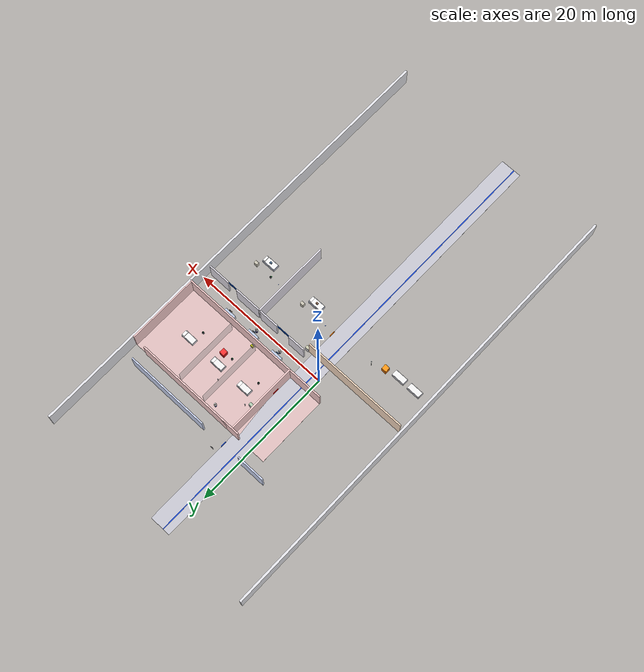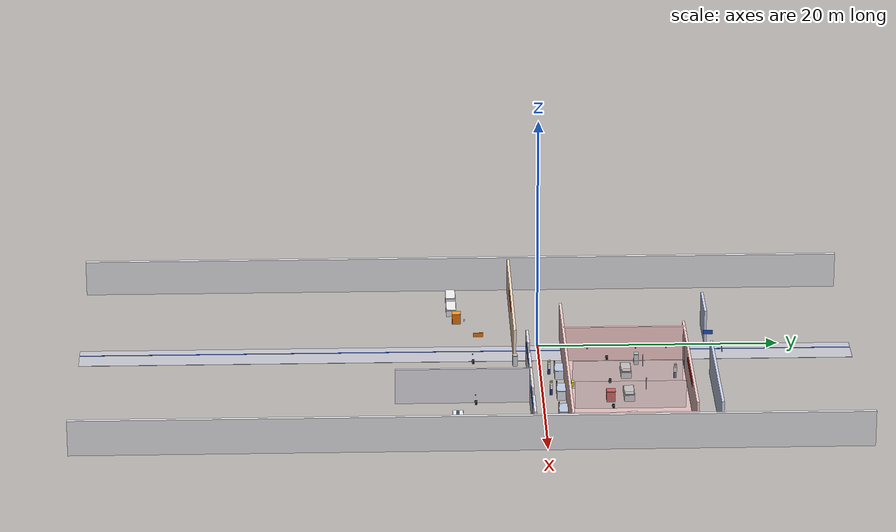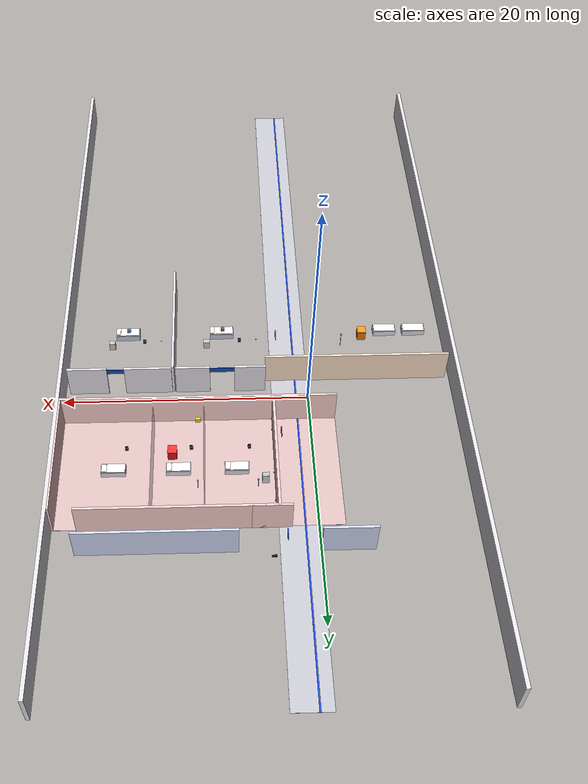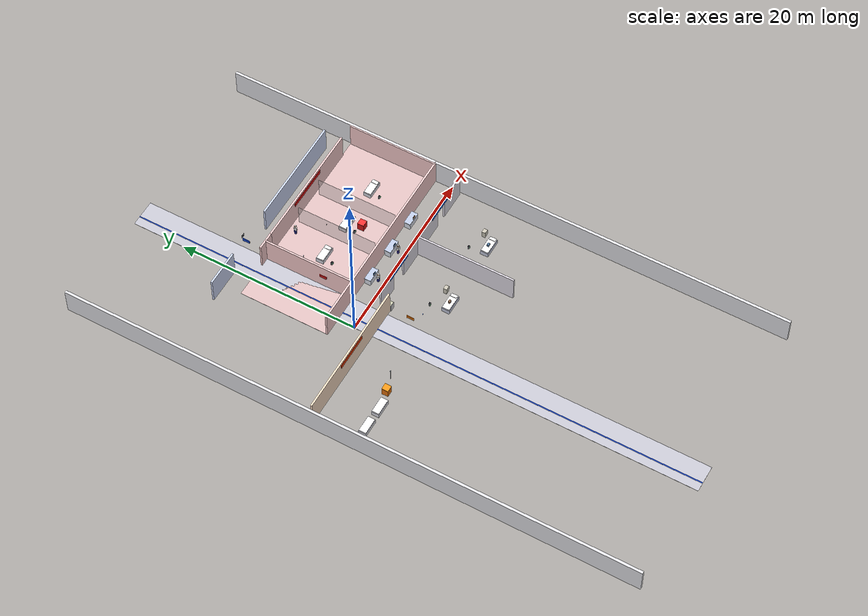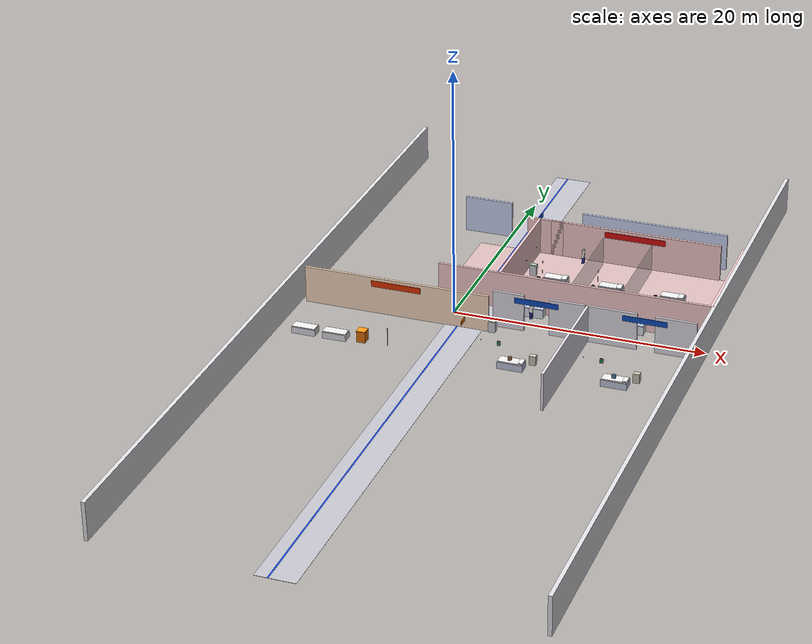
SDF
<sdf version="1.9">
 <world name="hospital">
  <model name="me">
   <static>true</static>
   <pose>20 -6 1.5 0 0 0</pose>
   <link name="l">
    <collision name="c"><geometry><box><size>0.3 64 3</size></box></geometry></collision>
    <visual name="v">
     <geometry><box><size>0.3 64 3</size></box></geometry>
     <material><ambient>0.9 0.9 0.92 1</ambient><diffuse>0.9 0.9 0.92 1</diffuse></material>
    </visual>
   </link>
  </model>
  <model name="mo">
   <static>true</static>
   <pose>-12 -6 1.5 0 0 0</pose>
   <link name="l">
    <collision name="c"><geometry><box><size>0.3 64 3</size></box></geometry></collision>
    <visual name="v">
     <geometry><box><size>0.3 64 3</size></box></geometry>
     <material><ambient>0.9 0.9 0.92 1</ambient><diffuse>0.9 0.9 0.92 1</diffuse></material>
    </visual>
   </link>
  </model>
  <model name="couloir_sol">
   <static>true</static>
   <pose>1.5 -6 0.01 0 0 0</pose>
   <link name="l">
    <visual name="v">
     <geometry><box><size>3 64 0.02</size></box></geometry>
     <material><ambient>0.78 0.78 0.82 1</ambient><diffuse>0.78 0.78 0.82 1</diffuse></material>
    </visual>
   </link>
  </model>
  <model name="ligne_guide">
   <static>true</static>
   <pose>1 -6 0.02 0 0 0</pose>
   <link name="l">
    <visual name="v">
     <geometry><box><size>0.12 64 0.005</size></box></geometry>
     <material>
      <ambient>0.1 0.3 0.9 1</ambient>
      <diffuse>0.1 0.3 0.9 1</diffuse>
      <emissive>0.02 0.06 0.18 1</emissive>
     </material>
    </visual>
   </link>
  </model>
  <model name="urg_n">
   <static>true</static>
   <pose>-4 -2 1.5 0 0 0</pose>
   <link name="l">
    <collision name="c"><geometry><box><size>15 0.2 3</size></box></geometry></collision>
    <visual name="v">
     <geometry><box><size>15 0.2 3</size></box></geometry>
     <material><ambient>1 0.88 0.78 1</ambient><diffuse>1 0.88 0.78 1</diffuse></material>
    </visual>
   </link>
  </model>
  <model name="sign_urg">
   <static>true</static>
   <pose>-4 -2.1 2.5 0 0 0</pose>
   <link name="l">
    <visual name="v">
     <geometry><box><size>4 0.06 0.5</size></box></geometry>
     <material>
      <ambient>0.9 0.2 0 1</ambient>
      <diffuse>0.9 0.2 0 1</diffuse>
      <emissive>0.35 0.05 0 1</emissive>
     </material>
    </visual>
   </link>
  </model>
  <model name="lit_u2">
   <static>true</static>
   <pose>-7 -7 0.38 0 0 0</pose>
   <link name="l">
    <collision name="c"><geometry><box><size>1.9 0.85 0.52</size></box></geometry></collision>
    <visual name="c">
     <geometry><box><size>1.9 0.85 0.52</size></box></geometry>
     <material><ambient>0.88 0.88 0.92 1</ambient><diffuse>0.88 0.88 0.92 1</diffuse></material>
    </visual>
    <visual name="mat">
     <pose>0 0 0.28 0 0 0</pose>
     <geometry><box><size>1.82 0.78 0.1</size></box></geometry>
     <material><ambient>0.96 0.96 0.96 1</ambient><diffuse>0.96 0.96 0.96 1</diffuse></material>
    </visual>
   </link>
  </model>
  <model name="lit_u3">
   <static>true</static>
   <pose>-9.5 -7 0.38 0 0 0</pose>
   <link name="l">
    <collision name="c"><geometry><box><size>1.9 0.85 0.52</size></box></geometry></collision>
    <visual name="c">
     <geometry><box><size>1.9 0.85 0.52</size></box></geometry>
     <material><ambient>0.88 0.88 0.92 1</ambient><diffuse>0.88 0.88 0.92 1</diffuse></material>
    </visual>
    <visual name="mat">
     <pose>0 0 0.28 0 0 0</pose>
     <geometry><box><size>1.82 0.78 0.1</size></box></geometry>
     <material><ambient>0.96 0.96 0.96 1</ambient><diffuse>0.96 0.96 0.96 1</diffuse></material>
    </visual>
   </link>
  </model>
  <model name="iv_u1">
   <static>true</static>
   <pose>-3.2 -6 1.0 0 0 0</pose>
   <link name="l">
    <visual name="p">
     <pose>0 0 -0.7 0 0 0</pose>
     <geometry><cylinder><radius>0.02</radius><length>1.4</length></cylinder></geometry>
     <material><ambient>0.5 0.5 0.5 1</ambient><diffuse>0.5 0.5 0.5 1</diffuse></material>
    </visual>
    <visual name="s">
     <geometry><box><size>0.1 0.06 0.16</size></box></geometry>
     <material><ambient>0.8 0.9 1 0.6</ambient><diffuse>0.8 0.9 1 0.6</diffuse></material>
    </visual>
   </link>
  </model>
  <model name="delivery_urg">
   <static>true</static>
   <pose>-5.0 -6.6 0.45 0 0 0</pose>
   <link name="l">
    <collision name="c"><geometry><box><size>0.7 0.7 0.9</size></box></geometry></collision>
    <visual name="v">
     <geometry><box><size>0.7 0.7 0.9</size></box></geometry>
     <material><ambient>0.9 0.45 0.05 1</ambient><diffuse>0.9 0.45 0.05 1</diffuse></material>
    </visual>
    <visual name="top">
     <pose>0 0 0.47 0 0 0</pose>
     <geometry><box><size>0.72 0.72 0.04</size></box></geometry>
     <material>
      <ambient>1 0.6 0.1 1</ambient>
      <diffuse>1 0.6 0.1 1</diffuse>
      <emissive>0.2 0.08 0 1</emissive>
     </material>
    </visual>
   </link>
  </model>
  <model name="re_sol">
   <static>true</static>
   <pose>9 7 0.01 0 0 0</pose>
   <link name="l">
    <visual name="v">
     <geometry><box><size>22 10 0.02</size></box></geometry>
     <material><ambient>0.88 0.75 0.75 1</ambient><diffuse>0.88 0.75 0.75 1</diffuse></material>
    </visual>
   </link>
  </model>
  <model name="re_n_l">
   <static>true</static>
   <pose>3.5 12 1.5 0 0 0</pose>
   <link name="l">
    <collision name="c"><geometry><box><size>3 0.2 3</size></box></geometry></collision>
    <visual name="v">
     <geometry><box><size>3 0.2 3</size></box></geometry>
     <material><ambient>1 0.82 0.82 1</ambient><diffuse>1 0.82 0.82 1</diffuse></material>
    </visual>
   </link>
  </model>
  <model name="re_n_r">
   <static>true</static>
   <pose>11 12 1.5 0 0 0</pose>
   <link name="l">
    <collision name="c"><geometry><box><size>14 0.2 3</size></box></geometry></collision>
    <visual name="v">
     <geometry><box><size>14 0.2 3</size></box></geometry>
     <material><ambient>1 0.82 0.82 1</ambient><diffuse>1 0.82 0.82 1</diffuse></material>
    </visual>
   </link>
  </model>
  <model name="re_s">
   <static>true</static>
   <pose>9 2 1.5 0 0 0</pose>
   <link name="l">
    <collision name="c"><geometry><box><size>22 0.2 3</size></box></geometry></collision>
    <visual name="v">
     <geometry><box><size>22 0.2 3</size></box></geometry>
     <material><ambient>1 0.82 0.82 1</ambient><diffuse>1 0.82 0.82 1</diffuse></material>
    </visual>
   </link>
  </model>
  <model name="re_e">
   <static>true</static>
   <pose>19.8 7 1.5 0 0 0</pose>
   <link name="l">
    <collision name="c"><geometry><box><size>0.2 10 3</size></box></geometry></collision>
    <visual name="v">
     <geometry><box><size>0.2 10 3</size></box></geometry>
     <material><ambient>1 0.82 0.82 1</ambient><diffuse>1 0.82 0.82 1</diffuse></material>
    </visual>
   </link>
  </model>
  <model name="re_o">
   <static>true</static>
   <pose>3 7 1.5 0 0 0</pose>
   <link name="l">
    <collision name="c"><geometry><box><size>0.2 10 3</size></box></geometry></collision>
    <visual name="v">
     <geometry><box><size>0.2 10 3</size></box></geometry>
     <material><ambient>1 0.82 0.82 1</ambient><diffuse>1 0.82 0.82 1</diffuse></material>
    </visual>
   </link>
  </model>
  <model name="sign_re">
   <static>true</static>
   <pose>11 11.9 2.5 0 0 0</pose>
   <link name="l">
    <visual name="v">
     <geometry><box><size>5 0.06 0.5</size></box></geometry>
     <material>
      <ambient>0.85 0.05 0.05 1</ambient>
      <diffuse>0.85 0.05 0.05 1</diffuse>
      <emissive>0.35 0 0 1</emissive>
     </material>
    </visual>
   </link>
  </model>
  <model name="rid_r1">
   <static>true</static>
   <pose>8.5 7 1.2 0 0 0</pose>
   <link name="l">
    <visual name="v">
     <geometry><box><size>0.04 9 2.4</size></box></geometry>
     <material><ambient>0.88 0.82 0.82 0.5</ambient><diffuse>0.88 0.82 0.82 0.5</diffuse></material>
    </visual>
   </link>
  </model>
  <model name="rid_r2">
   <static>true</static>
   <pose>12.5 7 1.2 0 0 0</pose>
   <link name="l">
    <visual name="v">
     <geometry><box><size>0.04 9 2.4</size></box></geometry>
     <material><ambient>0.88 0.82 0.82 0.5</ambient><diffuse>0.88 0.82 0.82 0.5</diffuse></material>
    </visual>
   </link>
  </model>
  <model name="lit_r1">
   <static>true</static>
   <pose>6 7 0.38 0 0 0</pose>
   <link name="l">
    <collision name="c"><geometry><box><size>1.9 0.85 0.52</size></box></geometry></collision>
    <visual name="c">
     <geometry><box><size>1.9 0.85 0.52</size></box></geometry>
     <material><ambient>0.88 0.88 0.92 1</ambient><diffuse>0.88 0.88 0.92 1</diffuse></material>
    </visual>
    <visual name="m">
     <pose>0 0 0.28 0 0 0</pose>
     <geometry><box><size>1.82 0.78 0.1</size></box></geometry>
     <material><ambient>0.96 0.96 0.96 1</ambient><diffuse>0.96 0.96 0.96 1</diffuse></material>
    </visual>
    <visual name="o">
     <pose>0.7 0 0.34 0 0 0</pose>
     <geometry><box><size>0.4 0.7 0.07</size></box></geometry>
     <material><ambient>0.98 0.98 0.98 1</ambient><diffuse>0.98 0.98 0.98 1</diffuse></material>
    </visual>
   </link>
  </model>
  <model name="lit_r2">
   <static>true</static>
   <pose>10.5 7 0.38 0 0 0</pose>
   <link name="l">
    <collision name="c"><geometry><box><size>1.9 0.85 0.52</size></box></geometry></collision>
    <visual name="c">
     <geometry><box><size>1.9 0.85 0.52</size></box></geometry>
     <material><ambient>0.88 0.88 0.92 1</ambient><diffuse>0.88 0.88 0.92 1</diffuse></material>
    </visual>
    <visual name="m">
     <pose>0 0 0.28 0 0 0</pose>
     <geometry><box><size>1.82 0.78 0.1</size></box></geometry>
     <material><ambient>0.96 0.96 0.96 1</ambient><diffuse>0.96 0.96 0.96 1</diffuse></material>
    </visual>
    <visual name="o">
     <pose>0.7 0 0.34 0 0 0</pose>
     <geometry><box><size>0.4 0.7 0.07</size></box></geometry>
     <material><ambient>0.98 0.98 0.98 1</ambient><diffuse>0.98 0.98 0.98 1</diffuse></material>
    </visual>
   </link>
  </model>
  <model name="lit_r3">
   <static>true</static>
   <pose>15.5 7 0.38 0 0 0</pose>
   <link name="l">
    <collision name="c"><geometry><box><size>1.9 0.85 0.52</size></box></geometry></collision>
    <visual name="c">
     <geometry><box><size>1.9 0.85 0.52</size></box></geometry>
     <material><ambient>0.88 0.88 0.92 1</ambient><diffuse>0.88 0.88 0.92 1</diffuse></material>
    </visual>
    <visual name="m">
     <pose>0 0 0.28 0 0 0</pose>
     <geometry><box><size>1.82 0.78 0.1</size></box></geometry>
     <material><ambient>0.96 0.96 0.96 1</ambient><diffuse>0.96 0.96 0.96 1</diffuse></material>
    </visual>
    <visual name="o">
     <pose>0.7 0 0.34 0 0 0</pose>
     <geometry><box><size>0.4 0.7 0.07</size></box></geometry>
     <material><ambient>0.98 0.98 0.98 1</ambient><diffuse>0.98 0.98 0.98 1</diffuse></material>
    </visual>
   </link>
  </model>
  <model name="mon_r1">
   <static>true</static>
   <pose>5.0 5.5 1.1 0 0 0</pose>
   <link name="l">
    <visual name="c">
     <geometry><box><size>0.24 0.18 0.3</size></box></geometry>
     <material><ambient>0.08 0.08 0.1 1</ambient><diffuse>0.08 0.08 0.1 1</diffuse></material>
    </visual>
    <visual name="e">
     <pose>0 -0.1 0 0.3 0 0</pose>
     <geometry><box><size>0.2 0.02 0.22</size></box></geometry>
     <material>
      <ambient>0 0.8 0.25 1</ambient>
      <diffuse>0 0.8 0.25 1</diffuse>
      <emissive>0 0.35 0.1 1</emissive>
     </material>
    </visual>
   </link>
  </model>
  <model name="mon_r2">
   <static>true</static>
   <pose>9.5 5.5 1.1 0 0 0</pose>
   <link name="l">
    <visual name="c">
     <geometry><box><size>0.24 0.18 0.3</size></box></geometry>
     <material><ambient>0.08 0.08 0.1 1</ambient><diffuse>0.08 0.08 0.1 1</diffuse></material>
    </visual>
    <visual name="e">
     <pose>0 -0.1 0 0.3 0 0</pose>
     <geometry><box><size>0.2 0.02 0.22</size></box></geometry>
     <material>
      <ambient>0 0.8 0.25 1</ambient>
      <diffuse>0 0.8 0.25 1</diffuse>
      <emissive>0 0.35 0.1 1</emissive>
     </material>
    </visual>
   </link>
  </model>
  <model name="mon_r3">
   <static>true</static>
   <pose>14.5 5.5 1.1 0 0 0</pose>
   <link name="l">
    <visual name="c">
     <geometry><box><size>0.24 0.18 0.3</size></box></geometry>
     <material><ambient>0.08 0.08 0.1 1</ambient><diffuse>0.08 0.08 0.1 1</diffuse></material>
    </visual>
    <visual name="e">
     <pose>0 -0.1 0 0.3 0 0</pose>
     <geometry><box><size>0.2 0.02 0.22</size></box></geometry>
     <material>
      <ambient>0 0.8 0.25 1</ambient>
      <diffuse>0 0.8 0.25 1</diffuse>
      <emissive>0 0.35 0.1 1</emissive>
     </material>
    </visual>
   </link>
  </model>
  <model name="iv_r1">
   <static>true</static>
   <pose>4.4 8.5 1.0 0 0 0</pose>
   <link name="l">
    <visual name="p">
     <pose>0 0 -0.7 0 0 0</pose>
     <geometry><cylinder><radius>0.02</radius><length>1.4</length></cylinder></geometry>
     <material><ambient>0.5 0.5 0.5 1</ambient><diffuse>0.5 0.5 0.5 1</diffuse></material>
    </visual>
    <visual name="s">
     <geometry><box><size>0.1 0.06 0.16</size></box></geometry>
     <material><ambient>0.8 0.9 1 0.6</ambient><diffuse>0.8 0.9 1 0.6</diffuse></material>
    </visual>
   </link>
  </model>
  <model name="iv_r2">
   <static>true</static>
   <pose>9.0 8.5 1.0 0 0 0</pose>
   <link name="l">
    <visual name="p">
     <pose>0 0 -0.7 0 0 0</pose>
     <geometry><cylinder><radius>0.02</radius><length>1.4</length></cylinder></geometry>
     <material><ambient>0.5 0.5 0.5 1</ambient><diffuse>0.5 0.5 0.5 1</diffuse></material>
    </visual>
    <visual name="s">
     <geometry><box><size>0.1 0.06 0.16</size></box></geometry>
     <material><ambient>0.8 0.9 1 0.6</ambient><diffuse>0.8 0.9 1 0.6</diffuse></material>
    </visual>
   </link>
  </model>
  <model name="inf_re">
   <static>true</static>
   <pose>7 11 0 0 0 -1.57</pose>
   <link name="l">
    <visual name="j">
     <pose>0 0 0.42 0 0 0</pose>
     <geometry><box><size>0.22 0.2 0.55</size></box></geometry>
     <material><ambient>0.15 0.18 0.55 1</ambient><diffuse>0.15 0.18 0.55 1</diffuse></material>
    </visual>
    <visual name="t">
     <pose>0 0 0.88 0 0 0</pose>
     <geometry><box><size>0.3 0.2 0.44</size></box></geometry>
     <material><ambient>0.95 0.95 0.95 1</ambient><diffuse>0.95 0.95 0.95 1</diffuse></material>
    </visual>
    <visual name="h">
     <pose>0 0 1.26 0 0 0</pose>
     <geometry><sphere><radius>0.12</radius></sphere></geometry>
     <material><ambient>0.8 0.64 0.5 1</ambient><diffuse>0.8 0.64 0.5 1</diffuse></material>
    </visual>
    <visual name="b">
     <pose>0 0 1.38 0 0 0</pose>
     <geometry><cylinder><radius>0.09</radius><length>0.05</length></cylinder></geometry>
     <material><ambient>0.95 0.95 0.95 1</ambient><diffuse>0.95 0.95 0.95 1</diffuse></material>
    </visual>
    <collision name="c">
     <pose>0 0 0.8 0 0 0</pose>
     <geometry><box><size>0.35 0.25 1.6</size></box></geometry>
    </collision>
   </link>
  </model>
  <model name="delivery_reanim">
   <static>true</static>
   <pose>11.0 5.5 0.45 0 0 0</pose>
   <link name="l">
    <collision name="c"><geometry><box><size>0.7 0.7 0.9</size></box></geometry></collision>
    <visual name="v">
     <geometry><box><size>0.7 0.7 0.9</size></box></geometry>
     <material><ambient>0.85 0.08 0.08 1</ambient><diffuse>0.85 0.08 0.08 1</diffuse></material>
    </visual>
    <visual name="top">
     <pose>0 0 0.47 0 0 0</pose>
     <geometry><box><size>0.72 0.72 0.04</size></box></geometry>
     <material>
      <ambient>1 0.2 0.2 1</ambient>
      <diffuse>1 0.2 0.2 1</diffuse>
      <emissive>0.3 0 0 1</emissive>
     </material>
    </visual>
   </link>
  </model>
  <model name="ph_s_l">
   <static>true</static>
   <pose>-2 14 1.5 0 0 0</pose>
   <link name="l">
    <collision name="c"><geometry><box><size>4 0.2 3</size></box></geometry></collision>
    <visual name="v">
     <geometry><box><size>4 0.2 3</size></box></geometry>
     <material><ambient>0.82 0.86 0.98 1</ambient><diffuse>0.82 0.86 0.98 1</diffuse></material>
    </visual>
   </link>
  </model>
  <model name="ph_s_r">
   <static>true</static>
   <pose>12 14 1.5 0 0 0</pose>
   <link name="l">
    <collision name="c"><geometry><box><size>12 0.2 3</size></box></geometry></collision>
    <visual name="v">
     <geometry><box><size>12 0.2 3</size></box></geometry>
     <material><ambient>0.82 0.86 0.98 1</ambient><diffuse>0.82 0.86 0.98 1</diffuse></material>
    </visual>
   </link>
  </model>
  <model name="pc_ph">
   <static>true</static>
   <pose>3.5 15.1 1.08 0 0 0</pose>
   <link name="l">
    <visual name="e">
     <geometry><box><size>0.42 0.04 0.32</size></box></geometry>
     <material><ambient>0.08 0.08 0.1 1</ambient><diffuse>0.08 0.08 0.1 1</diffuse></material>
    </visual>
    <visual name="g">
     <geometry><box><size>0.38 0.02 0.28</size></box></geometry>
     <material>
      <ambient>0.1 0.45 0.9 1</ambient>
      <diffuse>0.1 0.45 0.9 1</diffuse>
      <emissive>0.04 0.18 0.36 1</emissive>
     </material>
    </visual>
   </link>
  </model>
  <model name="cart1">
   <static>true</static>
   <pose>3.8 8 0.46 0 0 0</pose>
   <link name="l">
    <collision name="c"><geometry><box><size>0.55 0.38 0.92</size></box></geometry></collision>
    <visual name="corps">
     <geometry><box><size>0.55 0.38 0.88</size></box></geometry>
     <material><ambient>0.82 0.82 0.84 1</ambient><diffuse>0.82 0.82 0.84 1</diffuse></material>
    </visual>
    <visual name="pl">
     <pose>0 0 0.46 0 0 0</pose>
     <geometry><box><size>0.52 0.36 0.04</size></box></geometry>
     <material><ambient>0.7 0.8 0.7 1</ambient><diffuse>0.7 0.8 0.7 1</diffuse></material>
    </visual>
   </link>
  </model>
  <model name="cart2">
   <static>true</static>
   <pose>3.8 -2 0.46 0 0 0</pose>
   <link name="l">
    <collision name="c"><geometry><box><size>0.55 0.38 0.92</size></box></geometry></collision>
    <visual name="corps">
     <geometry><box><size>0.55 0.38 0.88</size></box></geometry>
     <material><ambient>0.82 0.82 0.84 1</ambient><diffuse>0.82 0.82 0.84 1</diffuse></material>
    </visual>
    <visual name="pl">
     <pose>0 0 0.46 0 0 0</pose>
     <geometry><box><size>0.52 0.36 0.04</size></box></geometry>
     <material><ambient>0.8 0.8 0.7 1</ambient><diffuse>0.8 0.8 0.7 1</diffuse></material>
    </visual>
   </link>
  </model>
  <model name="ch_p_sep">
   <static>true</static>
   <pose>11 -6.5 1.5 0 0 0</pose>
   <link name="l">
    <collision name="c"><geometry><box><size>0.2 11 3</size></box></geometry></collision>
    <visual name="v">
     <geometry><box><size>0.2 11 3</size></box></geometry>
     <material><ambient>0.9 0.88 0.92 1</ambient><diffuse>0.9 0.88 0.92 1</diffuse></material>
    </visual>
   </link>
  </model>
  <model name="ch_n1a">
   <static>true</static>
   <pose>4.75 -1 1.5 0 0 0</pose>
   <link name="l">
    <collision name="c"><geometry><box><size>2.5 0.2 3</size></box></geometry></collision>
    <visual name="v">
     <geometry><box><size>2.5 0.2 3</size></box></geometry>
     <material><ambient>0.9 0.88 0.92 1</ambient><diffuse>0.9 0.88 0.92 1</diffuse></material>
    </visual>
   </link>
  </model>
  <model name="ch_n1b">
   <static>true</static>
   <pose>9.4 -1 1.5 0 0 0</pose>
   <link name="l">
    <collision name="c"><geometry><box><size>2.8 0.2 3</size></box></geometry></collision>
    <visual name="v">
     <geometry><box><size>2.8 0.2 3</size></box></geometry>
     <material><ambient>0.9 0.88 0.92 1</ambient><diffuse>0.9 0.88 0.92 1</diffuse></material>
    </visual>
   </link>
  </model>
  <model name="ch_n2a">
   <static>true</static>
   <pose>13 -1 1.5 0 0 0</pose>
   <link name="l">
    <collision name="c"><geometry><box><size>3.8 0.2 3</size></box></geometry></collision>
    <visual name="v">
     <geometry><box><size>3.8 0.2 3</size></box></geometry>
     <material><ambient>0.9 0.88 0.92 1</ambient><diffuse>0.9 0.88 0.92 1</diffuse></material>
    </visual>
   </link>
  </model>
  <model name="ch_n2b">
   <static>true</static>
   <pose>17.9 -1 1.5 0 0 0</pose>
   <link name="l">
    <collision name="c"><geometry><box><size>3.2 0.2 3</size></box></geometry></collision>
    <visual name="v">
     <geometry><box><size>3.2 0.2 3</size></box></geometry>
     <material><ambient>0.9 0.88 0.92 1</ambient><diffuse>0.9 0.88 0.92 1</diffuse></material>
    </visual>
   </link>
  </model>
  <model name="sign_ch1">
   <static>true</static>
   <pose>7 -1.1 2.5 0 0 0</pose>
   <link name="l">
    <visual name="v">
     <geometry><box><size>3.5 0.06 0.45</size></box></geometry>
     <material>
      <ambient>0.05 0.3 0.75 1</ambient>
      <diffuse>0.05 0.3 0.75 1</diffuse>
      <emissive>0.02 0.12 0.3 1</emissive>
     </material>
    </visual>
   </link>
  </model>
  <model name="sign_ch2">
   <static>true</static>
   <pose>15.5 -1.1 2.5 0 0 0</pose>
   <link name="l">
    <visual name="v">
     <geometry><box><size>3.5 0.06 0.45</size></box></geometry>
     <material>
      <ambient>0.05 0.3 0.75 1</ambient>
      <diffuse>0.05 0.3 0.75 1</diffuse>
      <emissive>0.02 0.12 0.3 1</emissive>
     </material>
    </visual>
   </link>
  </model>
  <model name="lit_p1">
   <static>true</static>
   <pose>7 -7 0.38 0 0 0</pose>
   <link name="l">
    <collision name="c"><geometry><box><size>2.0 0.9 0.55</size></box></geometry></collision>
    <visual name="frame">
     <geometry><box><size>2.0 0.9 0.55</size></box></geometry>
     <material><ambient>0.78 0.8 0.88 1</ambient><diffuse>0.78 0.8 0.88 1</diffuse></material>
    </visual>
    <visual name="mat">
     <pose>0 0 0.3 0 0 0</pose>
     <geometry><box><size>1.9 0.82 0.12</size></box></geometry>
     <material><ambient>0.97 0.97 0.97 1</ambient><diffuse>0.97 0.97 0.97 1</diffuse></material>
    </visual>
    <visual name="oreil">
     <pose>0.8 0 0.38 0 0 0</pose>
     <geometry><box><size>0.35 0.7 0.08</size></box></geometry>
     <material><ambient>0.98 0.98 0.98 1</ambient><diffuse>0.98 0.98 0.98 1</diffuse></material>
    </visual>
    <visual name="pat">
     <pose>-0.1 0 0.4 0 0 0</pose>
     <geometry><box><size>0.28 0.22 0.48</size></box></geometry>
     <material><ambient>0.55 0.4 0.3 1</ambient><diffuse>0.55 0.4 0.3 1</diffuse></material>
    </visual>
   </link>
  </model>
  <model name="ecg_p1">
   <static>true</static>
   <pose>5.5 -5.5 1.1 0 0 0</pose>
   <link name="l">
    <visual name="c">
     <geometry><box><size>0.24 0.18 0.3</size></box></geometry>
     <material><ambient>0.1 0.1 0.12 1</ambient><diffuse>0.1 0.1 0.12 1</diffuse></material>
    </visual>
    <visual name="e">
     <pose>0 -0.1 0 0.3 0 0</pose>
     <geometry><box><size>0.2 0.02 0.22</size></box></geometry>
     <material>
      <ambient>0 0.8 0.2 1</ambient>
      <diffuse>0 0.8 0.2 1</diffuse>
      <emissive>0 0.35 0.08 1</emissive>
     </material>
    </visual>
   </link>
  </model>
  <model name="tbl_p1">
   <static>true</static>
   <pose>8.3 -5.8 0.38 0 0 0</pose>
   <link name="l">
    <collision name="c"><geometry><box><size>0.5 0.4 0.76</size></box></geometry></collision>
    <visual name="v">
     <geometry><box><size>0.5 0.4 0.76</size></box></geometry>
     <material><ambient>0.8 0.78 0.72 1</ambient><diffuse>0.8 0.78 0.72 1</diffuse></material>
    </visual>
   </link>
  </model>
  <model name="o2_p1">
   <static>true</static>
   <pose>4.1 -5.5 1.15 0 0 0</pose>
   <link name="l">
    <visual name="v">
     <geometry><cylinder><radius>0.04</radius><length>0.05</length></cylinder></geometry>
     <material><ambient>0.2 0.4 0.9 1</ambient><diffuse>0.2 0.4 0.9 1</diffuse></material>
    </visual>
   </link>
  </model>
  <model name="lit_p2">
   <static>true</static>
   <pose>15 -7 0.38 0 0 0</pose>
   <link name="l">
    <collision name="c"><geometry><box><size>2.0 0.9 0.55</size></box></geometry></collision>
    <visual name="frame">
     <geometry><box><size>2.0 0.9 0.55</size></box></geometry>
     <material><ambient>0.78 0.8 0.88 1</ambient><diffuse>0.78 0.8 0.88 1</diffuse></material>
    </visual>
    <visual name="mat">
     <pose>0 0 0.3 0 0 0</pose>
     <geometry><box><size>1.9 0.82 0.12</size></box></geometry>
     <material><ambient>0.97 0.97 0.97 1</ambient><diffuse>0.97 0.97 0.97 1</diffuse></material>
    </visual>
    <visual name="oreil">
     <pose>0.8 0 0.38 0 0 0</pose>
     <geometry><box><size>0.35 0.7 0.08</size></box></geometry>
     <material><ambient>0.98 0.98 0.98 1</ambient><diffuse>0.98 0.98 0.98 1</diffuse></material>
    </visual>
    <visual name="pat">
     <pose>-0.1 0 0.4 0 0 0</pose>
     <geometry><box><size>0.28 0.22 0.48</size></box></geometry>
     <material><ambient>0.35 0.5 0.65 1</ambient><diffuse>0.35 0.5 0.65 1</diffuse></material>
    </visual>
   </link>
  </model>
  <model name="ecg_p2">
   <static>true</static>
   <pose>13.5 -5.5 1.1 0 0 0</pose>
   <link name="l">
    <visual name="c">
     <geometry><box><size>0.24 0.18 0.3</size></box></geometry>
     <material><ambient>0.1 0.1 0.12 1</ambient><diffuse>0.1 0.1 0.12 1</diffuse></material>
    </visual>
    <visual name="e">
     <pose>0 -0.1 0 0.3 0 0</pose>
     <geometry><box><size>0.2 0.02 0.22</size></box></geometry>
     <material>
      <ambient>0 0.8 0.2 1</ambient>
      <diffuse>0 0.8 0.2 1</diffuse>
      <emissive>0 0.35 0.08 1</emissive>
     </material>
    </visual>
   </link>
  </model>
  <model name="tbl_p2">
   <static>true</static>
   <pose>16.3 -5.8 0.38 0 0 0</pose>
   <link name="l">
    <collision name="c"><geometry><box><size>0.5 0.4 0.76</size></box></geometry></collision>
    <visual name="v">
     <geometry><box><size>0.5 0.4 0.76</size></box></geometry>
     <material><ambient>0.8 0.78 0.72 1</ambient><diffuse>0.8 0.78 0.72 1</diffuse></material>
    </visual>
   </link>
  </model>
  <model name="o2_p2">
   <static>true</static>
   <pose>12.1 -5.5 1.15 0 0 0</pose>
   <link name="l">
    <visual name="v">
     <geometry><cylinder><radius>0.04</radius><length>0.05</length></cylinder></geometry>
     <material><ambient>0.2 0.4 0.9 1</ambient><diffuse>0.2 0.4 0.9 1</diffuse></material>
    </visual>
   </link>
  </model>
  <model name="poste_ws1">
   <static>true</static>
   <pose>6 1.5 0.38 0 0 0</pose>
   <link name="l">
    <collision name="c"><geometry><box><size>1.6 0.7 0.76</size></box></geometry></collision>
    <visual name="t">
     <geometry><box><size>1.6 0.7 0.76</size></box></geometry>
     <material><ambient>0.88 0.9 0.95 1</ambient><diffuse>0.88 0.9 0.95 1</diffuse></material>
    </visual>
    <visual name="top">
     <pose>0 0 0.4 0 0 0</pose>
     <geometry><box><size>1.62 0.72 0.04</size></box></geometry>
     <material><ambient>0.75 0.8 0.9 1</ambient><diffuse>0.75 0.8 0.9 1</diffuse></material>
    </visual>
   </link>
  </model>
  <model name="mon_inf1">
   <static>true</static>
   <pose>6 1.15 1.12 0 0 0</pose>
   <link name="l">
    <visual name="c">
     <geometry><box><size>0.42 0.06 0.3</size></box></geometry>
     <material><ambient>0.08 0.08 0.1 1</ambient><diffuse>0.08 0.08 0.1 1</diffuse></material>
    </visual>
    <visual name="e">
     <pose>0 -0.03 0 0.2 0 0</pose>
     <geometry><box><size>0.38 0.02 0.26</size></box></geometry>
     <material>
      <ambient>0.05 0.45 0.85 1</ambient>
      <diffuse>0.05 0.45 0.85 1</diffuse>
      <emissive>0.02 0.18 0.35 1</emissive>
     </material>
    </visual>
   </link>
  </model>
  <model name="poste_ws2">
   <static>true</static>
   <pose>10 1.5 0.38 0 0 0</pose>
   <link name="l">
    <collision name="c"><geometry><box><size>1.6 0.7 0.76</size></box></geometry></collision>
    <visual name="t">
     <geometry><box><size>1.6 0.7 0.76</size></box></geometry>
     <material><ambient>0.88 0.9 0.95 1</ambient><diffuse>0.88 0.9 0.95 1</diffuse></material>
    </visual>
    <visual name="top">
     <pose>0 0 0.4 0 0 0</pose>
     <geometry><box><size>1.62 0.72 0.04</size></box></geometry>
     <material><ambient>0.75 0.8 0.9 1</ambient><diffuse>0.75 0.8 0.9 1</diffuse></material>
    </visual>
   </link>
  </model>
  <model name="mon_inf2">
   <static>true</static>
   <pose>10 1.15 1.12 0 0 0</pose>
   <link name="l">
    <visual name="c">
     <geometry><box><size>0.42 0.06 0.3</size></box></geometry>
     <material><ambient>0.08 0.08 0.1 1</ambient><diffuse>0.08 0.08 0.1 1</diffuse></material>
    </visual>
    <visual name="e">
     <pose>0 -0.03 0 0.2 0 0</pose>
     <geometry><box><size>0.38 0.02 0.26</size></box></geometry>
     <material>
      <ambient>0.05 0.45 0.85 1</ambient>
      <diffuse>0.05 0.45 0.85 1</diffuse>
      <emissive>0.02 0.18 0.35 1</emissive>
     </material>
    </visual>
   </link>
  </model>
  <model name="poste_ws3">
   <static>true</static>
   <pose>14 1.5 0.38 0 0 0</pose>
   <link name="l">
    <collision name="c"><geometry><box><size>1.6 0.7 0.76</size></box></geometry></collision>
    <visual name="t">
     <geometry><box><size>1.6 0.7 0.76</size></box></geometry>
     <material><ambient>0.88 0.9 0.95 1</ambient><diffuse>0.88 0.9 0.95 1</diffuse></material>
    </visual>
    <visual name="top">
     <pose>0 0 0.4 0 0 0</pose>
     <geometry><box><size>1.62 0.72 0.04</size></box></geometry>
     <material><ambient>0.75 0.8 0.9 1</ambient><diffuse>0.75 0.8 0.9 1</diffuse></material>
    </visual>
   </link>
  </model>
  <model name="mon_inf3">
   <static>true</static>
   <pose>14 1.15 1.12 0 0 0</pose>
   <link name="l">
    <visual name="c">
     <geometry><box><size>0.42 0.06 0.3</size></box></geometry>
     <material><ambient>0.08 0.08 0.1 1</ambient><diffuse>0.08 0.08 0.1 1</diffuse></material>
    </visual>
    <visual name="e">
     <pose>0 -0.03 0 0.2 0 0</pose>
     <geometry><box><size>0.38 0.02 0.26</size></box></geometry>
     <material>
      <ambient>0.85 0.45 0.05 1</ambient>
      <diffuse>0.85 0.45 0.05 1</diffuse>
      <emissive>0.35 0.18 0.02 1</emissive>
     </material>
    </visual>
   </link>
  </model>
  <model name="inf_post1">
   <static>true</static>
   <pose>6 0.7 0 0 0 0</pose>
   <link name="l">
    <visual name="j">
     <pose>0 0 0.42 0 0 0</pose>
     <geometry><box><size>0.22 0.2 0.55</size></box></geometry>
     <material><ambient>0.15 0.18 0.55 1</ambient><diffuse>0.15 0.18 0.55 1</diffuse></material>
    </visual>
    <visual name="t">
     <pose>0 0 0.88 0 0 0</pose>
     <geometry><box><size>0.3 0.2 0.44</size></box></geometry>
     <material><ambient>0.95 0.95 0.95 1</ambient><diffuse>0.95 0.95 0.95 1</diffuse></material>
    </visual>
    <visual name="h">
     <pose>0 0 1.26 0 0 0</pose>
     <geometry><sphere><radius>0.12</radius></sphere></geometry>
     <material><ambient>0.8 0.62 0.48 1</ambient><diffuse>0.8 0.62 0.48 1</diffuse></material>
    </visual>
    <visual name="b">
     <pose>0 0 1.38 0 0 0</pose>
     <geometry><cylinder><radius>0.09</radius><length>0.05</length></cylinder></geometry>
     <material><ambient>0.95 0.95 0.95 1</ambient><diffuse>0.95 0.95 0.95 1</diffuse></material>
    </visual>
    <collision name="c">
     <pose>0 0 0.8 0 0 0</pose>
     <geometry><box><size>0.35 0.25 1.6</size></box></geometry>
    </collision>
   </link>
  </model>
  <model name="inf_post2">
   <static>true</static>
   <pose>10 0.7 0 0 0 0</pose>
   <link name="l">
    <visual name="j">
     <pose>0 0 0.42 0 0 0</pose>
     <geometry><box><size>0.22 0.2 0.55</size></box></geometry>
     <material><ambient>0.18 0.15 0.55 1</ambient><diffuse>0.18 0.15 0.55 1</diffuse></material>
    </visual>
    <visual name="t">
     <pose>0 0 0.88 0 0 0</pose>
     <geometry><box><size>0.3 0.2 0.44</size></box></geometry>
     <material><ambient>0.95 0.95 0.95 1</ambient><diffuse>0.95 0.95 0.95 1</diffuse></material>
    </visual>
    <visual name="h">
     <pose>0 0 1.26 0 0 0</pose>
     <geometry><sphere><radius>0.12</radius></sphere></geometry>
     <material><ambient>0.75 0.58 0.42 1</ambient><diffuse>0.75 0.58 0.42 1</diffuse></material>
    </visual>
    <visual name="b">
     <pose>0 0 1.38 0 0 0</pose>
     <geometry><cylinder><radius>0.09</radius><length>0.05</length></cylinder></geometry>
     <material><ambient>0.95 0.95 0.95 1</ambient><diffuse>0.95 0.95 0.95 1</diffuse></material>
    </visual>
    <collision name="c">
     <pose>0 0 0.8 0 0 0</pose>
     <geometry><box><size>0.35 0.25 1.6</size></box></geometry>
    </collision>
   </link>
  </model>
  <model name="sign_poste">
   <static>true</static>
   <pose>9 1.95 2.5 0 0 0</pose>
   <link name="l">
    <visual name="v">
     <geometry><box><size>8 0.06 0.45</size></box></geometry>
     <material>
      <ambient>0.08 0.35 0.65 1</ambient>
      <diffuse>0.08 0.35 0.65 1</diffuse>
      <emissive>0.03 0.14 0.26 1</emissive>
     </material>
    </visual>
   </link>
  </model>
  <model name="dir_ph">
   <static>true</static>
   <pose>2.5 14 2.2 0 0 0</pose>
   <link name="l">
    <visual name="v">
     <geometry><box><size>0.06 0.8 0.35</size></box></geometry>
     <material>
      <ambient>0.1 0.3 0.85 1</ambient>
      <diffuse>0.1 0.3 0.85 1</diffuse>
      <emissive>0.04 0.12 0.35 1</emissive>
     </material>
    </visual>
   </link>
  </model>
  <model name="dir_re">
   <static>true</static>
   <pose>2.5 5 2.2 0 0 0</pose>
   <link name="l">
    <visual name="v">
     <geometry><box><size>0.06 0.8 0.35</size></box></geometry>
     <material>
      <ambient>0.85 0.1 0.1 1</ambient>
      <diffuse>0.85 0.1 0.1 1</diffuse>
      <emissive>0.35 0.04 0.04 1</emissive>
     </material>
    </visual>
   </link>
  </model>
  <model name="dir_urg">
   <static>true</static>
   <pose>2.5 -5 2.2 0 0 0</pose>
   <link name="l">
    <visual name="v">
     <geometry><box><size>0.06 0.8 0.35</size></box></geometry>
     <material>
      <ambient>0.9 0.45 0.05 1</ambient>
      <diffuse>0.9 0.45 0.05 1</diffuse>
      <emissive>0.35 0.18 0.02 1</emissive>
     </material>
    </visual>
   </link>
  </model>
  <model name="defib">
   <static>true</static>
   <pose>9 2.5 0.65 0 0 0</pose>
   <link name="l">
    <collision name="c"><geometry><box><size>0.4 0.22 0.38</size></box></geometry></collision>
    <visual name="v">
     <geometry><box><size>0.4 0.22 0.38</size></box></geometry>
     <material>
      <ambient>0.88 0.88 0.08 1</ambient>
      <diffuse>0.88 0.88 0.08 1</diffuse>
      <emissive>0.15 0.15 0 1</emissive>
     </material>
    </visual>
    <visual name="lcd">
     <pose>0 -0.12 0.05 0.2 0 0</pose>
     <geometry><box><size>0.28 0.02 0.2</size></box></geometry>
     <material>
      <ambient>0.05 0.2 0.45 1</ambient>
      <diffuse>0.05 0.2 0.45 1</diffuse>
      <emissive>0.02 0.08 0.18 1</emissive>
     </material>
    </visual>
   </link>
  </model>
  <model name="o2_r1">
   <static>true</static>
   <pose>3.2 4 1.15 0 0 0</pose>
   <link name="l">
    <visual name="v">
     <geometry><cylinder><radius>0.04</radius><length>0.06</length></cylinder></geometry>
     <material><ambient>0.2 0.4 0.9 1</ambient><diffuse>0.2 0.4 0.9 1</diffuse></material>
    </visual>
   </link>
  </model>
  <model name="o2_r2">
   <static>true</static>
   <pose>3.2 8 1.15 0 0 0</pose>
   <link name="l">
    <visual name="v">
     <geometry><cylinder><radius>0.04</radius><length>0.06</length></cylinder></geometry>
     <material><ambient>0.2 0.4 0.9 1</ambient><diffuse>0.2 0.4 0.9 1</diffuse></material>
    </visual>
   </link>
  </model>
  <model name="o2_r3">
   <static>true</static>
   <pose>3.2 10.5 1.15 0 0 0</pose>
   <link name="l">
    <visual name="v">
     <geometry><cylinder><radius>0.04</radius><length>0.06</length></cylinder></geometry>
     <material><ambient>0.2 0.4 0.9 1</ambient><diffuse>0.2 0.4 0.9 1</diffuse></material>
    </visual>
   </link>
  </model>
 </world>
</sdf>
